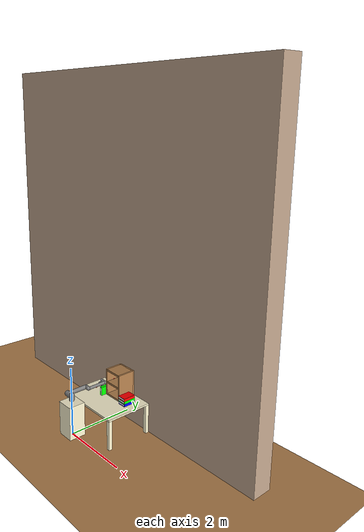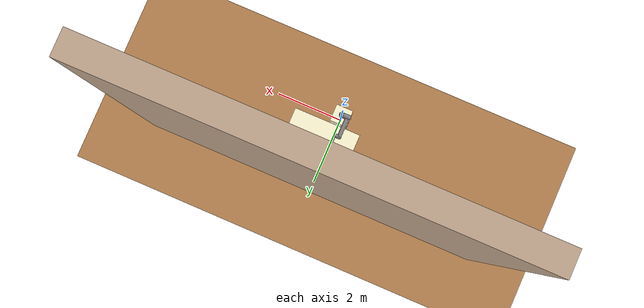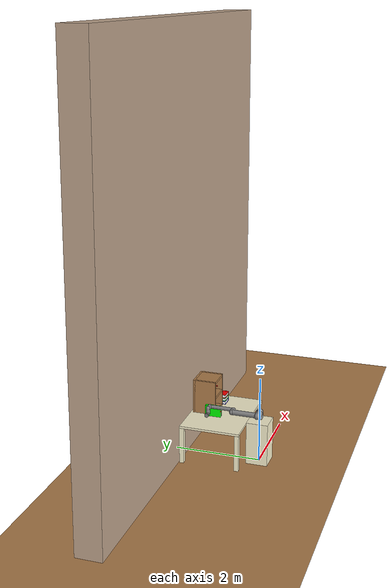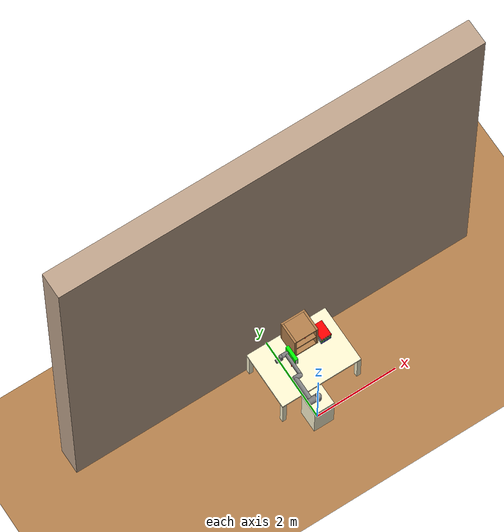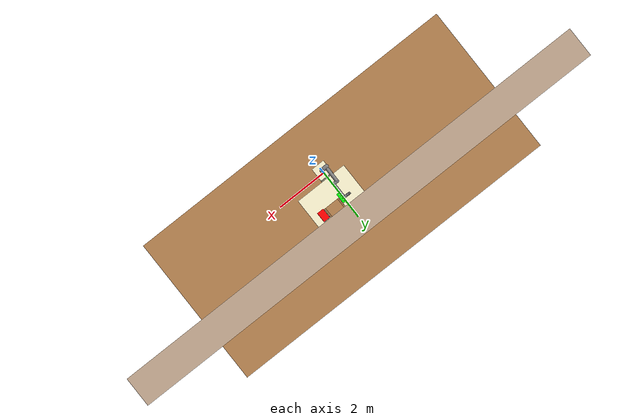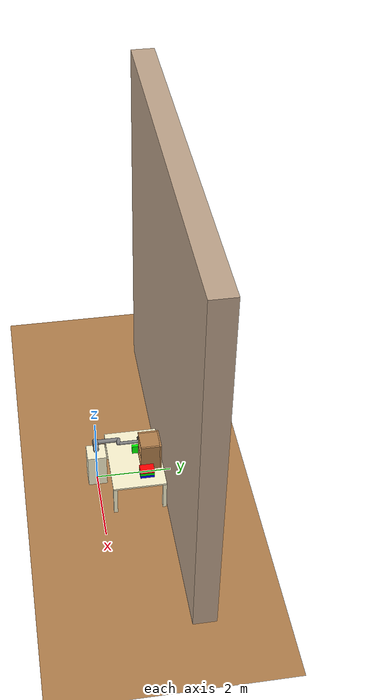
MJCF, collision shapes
<mujoco model="ur10e">
  <compiler angle="radian" meshdir="assets" autolimits="true"/>

  <option integrator="implicitfast"/>

  <default>
    <default class="ur10e">
      <material specular="0.5" shininess="0.25"/>
      <joint axis="0 1 0" range="-6.28319 6.28319" armature="0.1"/>
      <position ctrlrange="-6.2831 6.2831"/>
      <general biastype="affine" ctrlrange="-6.2831 6.2831" gainprm="5000" biasprm="0 -5000 -500"/>
      <default class="size4">
        <joint damping="10"/>
        <general forcerange="-330 330"/>
      </default>
      <default class="size3">
        <joint damping="5"/>
        <general forcerange="-150 150"/>
        <default class="size3_limited">
          <joint range="-3.1415 3.1415"/>
          <general ctrlrange="-3.1415 3.1415"/>
        </default>
      </default>
      <default class="size2">
        <joint damping="2"/>
        <general forcerange="-56 56"/>
      </default>
      <default class="visual">
        <geom type="mesh" contype="0" conaffinity="0" group="2"/>
      </default>
      <default class="collision">
        <geom type="capsule" group="3"/>
        <default class="eef_collision">
          <geom type="cylinder"/>
        </default>
      </default>
      <site size="0.001" rgba="0.5 0.5 0.5 0.3" group="4"/>
    </default>
  </default>

  <asset>
    <material class="ur10e" name="black" rgba="0.033 0.033 0.033 1"/>
    <material class="ur10e" name="jointgray" rgba="0.278 0.278 0.278 1"/>
    <material class="ur10e" name="linkgray" rgba="0.82 0.82 0.82 1"/>
    <material class="ur10e" name="urblue" rgba="0.49 0.678 0.8 1"/>
    <texture name="wood_texture" type="2d" file="assets/wood.png" />
    <material name="wood_material" texture="wood_texture" specular="0.3" shininess="0.1" />
    <texture name="shelf_wood_texture" type="2d" file="assets/shelf_wood.png" />
    <material name="shelf_wood_material" texture="shelf_wood_texture" specular="0.3" shininess="0.1" texrepeat="1 1" texuniform="true" />

    <mesh file="base_0.obj"/>
    <mesh file="base_1.obj"/>
    <mesh file="shoulder_0.obj"/>
    <mesh file="shoulder_1.obj"/>
    <mesh file="shoulder_2.obj"/>
    <mesh file="upperarm_0.obj"/>
    <mesh file="upperarm_1.obj"/>
    <mesh file="upperarm_2.obj"/>
    <mesh file="upperarm_3.obj"/>
    <mesh file="forearm_0.obj"/>
    <mesh file="forearm_1.obj"/>
    <mesh file="forearm_2.obj"/>
    <mesh file="forearm_3.obj"/>
    <mesh file="wrist1_0.obj"/>
    <mesh file="wrist1_1.obj"/>
    <mesh file="wrist1_2.obj"/>
    <mesh file="wrist2_0.obj"/>
    <mesh file="wrist2_1.obj"/>
    <mesh file="wrist2_2.obj"/>
    <mesh file="wrist3.obj"/>

    <texture name="texplane" type="2d" builtin="checker" rgb1=".2 .3 .4" rgb2=".1 0.15 0.2" width="100" height="100" />
    <material name="MatPlane" reflectance="0.5" texture="texplane" texrepeat="1 1" texuniform="true" />
    <material name="red_cover" rgba="1 0 0 1" />
        <!-- White material for the pages -->
    <material name="white_pages" rgba="1 1 1 1" />
  </asset>

  <worldbody>
    <geom name="floor" pos="0 0 0" size="500 500 0.125" type="plane" material='shelf_wood_material' condim="3" group="2"/>
    <light name="spotlight" mode="targetbodycom" target="wrist_2_link" pos="0 -1 2"/>
    <camera pos="4.863 0.258 1.375" xyaxes="0 1 0.000 -0.215 0 1"/>
    <camera name="custom_view" pos="2.327 3.864 4.158" xyaxes="-0.834 0.552 0.000 -0.361 -0.545 0.757"/>
    <camera name="manipulation_view_1" pos="-0.420 -0.913 2.605" xyaxes="0.974 -0.227 -0.000 0.139 0.595 0.791"/>
    <camera name="manipulation_view_2" pos="1.440 -0.462 2.380" xyaxes="0.690 0.723 -0.000 -0.367 0.350 0.862"/>
    <camera name="obstacle_avoidance_view" pos="0.710 -1.344 1.547" xyaxes="0.954 0.299 -0.000 -0.042 0.134 0.990"/>
    <camera name="obstacle_avoidance_view_2" pos="0.520 -1.374 1.635" xyaxes="0.988 0.151 0.000 -0.021 0.139 0.990"/>
    <camera name="video_2" pos="2.001 -0.671 2.766" xyaxes="0.657 0.754 -0.000 -0.489 0.426 0.761"/>
    <camera name="video_3" pos="-1.681 -0.140 1.998" xyaxes="0.421 -0.907 -0.000 0.314 0.146 0.938"/>

    <body name="new_table" pos="0.3 1.0 0.75">
        <!-- Table top -->
        <geom name="table_top" type="box" size="1 0.7 0.025" pos="0 0 0.13" rgba='0.99 0.96 0.82 1' />

        <!-- Table legs -->
        <body name="table_leg1" pos="0.95 0.65 -0.323">
            <geom name="leg1" type="box" size="0.05 0.05 0.427" rgba='0.99 0.96 0.82 1'  />
        </body>
        <body name="table_leg2" pos="-0.95 0.65 -0.323">
            <geom name="leg2" type="box" size="0.05 0.05 0.427" rgba='0.99 0.96 0.82 1'  />
        </body>
        <body name="table_leg3" pos="0.95 -0.65 -0.323">
            <geom name="leg3" type="box" size="0.05 0.05 0.427" rgba='0.99 0.96 0.82 1'  />
        </body>
        <body name="table_leg4" pos="-0.95 -0.65 -0.323">
            <geom name="leg4" type="box" size="0.05 0.05 0.427" rgba='0.99 0.96 0.82 1'  />
        </body>
    </body>

    <site name="start_point" pos="-0.07 0.91 1.105" size="0.015" rgba="1 0 0 1"/>
    <site name="middle_point_1" pos="-0.05 0.94 1.155" size="0.015" rgba="0 1 0 0"/>
    <site name="middle_point_2" pos="-0.03 0.97 1.205" size="0.015" rgba="0 1 0 0"/>
    <site name="middle_point_3" pos="-0.01 1 1.255" size="0.015" rgba="0 1 0 0"/>
    <site name="middle_point_4" pos="0.05 1.005 1.28" size="0.015" rgba="0 1 0 0"/>
    <site name="middle_point_5" pos="0.1 1.01 1.305" size="0.015" rgba="0 1 0 0"/>
    <site name="middle_point_6" pos="0.15 1.015 1.330" size="0.015" rgba="0 1 0 0"/>
    <site name="middle_point_7" pos="0.2 1.02 1.355" size="0.015" rgba="0 1 0 0"/>
    <site name="middle_point_8" pos="0.25 1.015 1.38" size="0.015" rgba="0 1 0 0"/>
    <site name="middle_point_9" pos="0.3 1.02 1.405" size="0.015" rgba="0 1 0 0"/>
    <site name="middle_point_10" pos="0.35 1.02 1.43" size="0.015" rgba="0 1 0 0"/>
    <site name="middle_point_11" pos="0.4 1.02 1.455" size="0.015" rgba="0 1 0 0"/>
    <site name="middle_point_12" pos="0.407 1.055 1.467" size="0.015" rgba="0 1 0 0"/>
    <site name="middle_point_13" pos="0.415 1.09 1.48" size="0.015" rgba="0 1 0 0"/>
    <site name="middle_point_14" pos="0.422 1.125 1.492" size="0.015" rgba="0 1 0 0"/>
    <site name="middle_point_15" pos="0.43 1.16 1.505" size="0.015" rgba="0 1 0 0"/>

    <site name="goal_point" pos="0.43 1.16 1.505" size="0.015" rgba="1 0 0 1"/>

    <body name="robot_base" pos="0 0 0.5">
        <geom type="box" size="0.25 0.25 0.5" rgba="0.99 0.96 0.82 1"/>
    </body>

    <body name="behind_wall" pos="0 2.02 5.0">
        <geom type="box" size="5.0 0.3 5.0" rgba="0.745 0.64 0.545 1"/>
    </body>

    <body name="shelf_1" pos="0.155 1.36 1.305">
        <geom type="box" size="0.025 0.25 0.4" material='wood_material'/>
    </body>

    <body name="shelf_2" pos="0.705 1.36 1.305">
        <geom type="box" size="0.025 0.25 0.4" material='wood_material'/>
    </body>

    <body name="shelf_3" pos="0.43 1.36 1.305">
        <geom type="box" size="0.25 0.25 0.025" material='wood_material'/>
    </body>

    <body name="shelf_4" pos="0.43 1.36 0.93">
        <geom type="box" size="0.25 0.25 0.025" material='wood_material'/>
    </body>

    <body name="shelf_5" pos="0.43 1.36 1.68">
        <geom type="box" size="0.25 0.25 0.025" material='wood_material'/>
    </body>

    <body name="shelf_6" pos="0.43 1.625 1.305">
        <geom type="box" size="0.3 0.025 0.4" material='wood_material'/>
    </body>

    <body name="book_1" pos="0.08 1.135 1.03">
        <geom type="box" size="0.005 0.187 0.125" pos="0.035 0 0" rgba="0 1 0 1" />
        <geom type="box" size="0.005 0.187 0.125" pos="-0.035 0 0" rgba="0 1 0 1" />
        <geom type="box" size="0.04 0.187 0.005" pos="0 0 0.124" rgba="0 1 0 1" />
        <geom type="box" size="0.03 0.18 0.125" pos="0 0 0" rgba="1 1 1 1" />
    </body>

    <body name="book_2" pos="0.9 1.235 0.945" quat="0.707 0 0.707 0">
        <geom type="box" size="0.005 0.187 0.125" pos="0.035 0 0" rgba="0 0 1 1" />
        <geom type="box" size="0.005 0.187 0.125" pos="-0.035 0 0" rgba="0 0 1 1" />
        <geom type="box" size="0.04 0.187 0.005" pos="0 0 0.124" rgba="0 0 1 1" />
        <geom type="box" size="0.03 0.18 0.125" pos="0 0 0" rgba="1 1 1 1" />
    </body>

    <body name="book_3" pos="0.9 1.235 1.025" quat="0.707 0 0.707 0">
        <geom type="box" size="0.005 0.187 0.125" pos="0.035 0 0" rgba="0 1 0 1" />
        <geom type="box" size="0.005 0.187 0.125" pos="-0.035 0 0" rgba="0 1 0 1" />
        <geom type="box" size="0.04 0.187 0.005" pos="0 0 0.124" rgba="0 1 0 1" />
        <geom type="box" size="0.03 0.18 0.125" pos="0 0 0" rgba="1 1 1 1" />
    </body>

    <body name="book_4" pos="0.9 1.235 1.105" quat="0.707 0 0.707 0">
        <geom type="box" size="0.005 0.187 0.125" pos="0.035 0 0" rgba="1 0 0 1" />
        <geom type="box" size="0.005 0.187 0.125" pos="-0.035 0 0" rgba="1 0 0 1" />
        <geom type="box" size="0.04 0.187 0.005" pos="0 0 0.124" rgba="1 0 0 1" />
        <geom type="box" size="0.03 0.18 0.125" pos="0 0 0" rgba="1 1 1 1" />
    </body>

    <body name="base" pos="0 0 1" quat="1 0 0 1" childclass="ur10e">
      <inertial mass="4.0" pos="0 0 0" diaginertia="0.0061063308908 0.0061063308908 0.01125"/>
      <geom name="base_0" mesh="base_0" material="black" class="visual"/>
      <geom name="base_1" mesh="base_1" material="jointgray" class="visual"/>
      <body name="shoulder_link" pos="0 0 0.181">
        <inertial pos="0 0 0" mass="7.778" diaginertia="0.0314743 0.0314743 0.0218756"/>
        <joint name="shoulder_pan_joint" class="size4" axis="0 0 1"/>
        <geom name="shoulder_0" mesh="shoulder_0" material="urblue" class="visual"/>
        <geom name="shoulder_1" mesh="shoulder_1" material="black" class="visual"/>
        <geom name="shoulder_2" mesh="shoulder_2" material="jointgray" class="visual"/>
        <geom name="shoulder_collision" class="collision" size="0.078 0.06" pos="0 0 -0.04"/>
        <body name="upper_arm_link" pos="0 0.176 0" quat="1 0 1 0">
          <inertial pos="0 0 0.3065" mass="12.93" diaginertia="0.423074 0.423074 0.0363656"/>
          <joint name="shoulder_lift_joint" class="size4"/>
          <geom name="upperarm_0" mesh="upperarm_0" material="black" class="visual"/>
          <geom name="upperarm_1" mesh="upperarm_1" material="jointgray" class="visual"/>
          <geom name="upperarm_2" mesh="upperarm_2" material="urblue" class="visual"/>
          <geom name="upperarm_3" mesh="upperarm_3" material="linkgray" class="visual"/>
          <geom name="upperarm_collision_1" class="collision" pos="0 -0.05 0" quat="1 1 0 0" size="0.078 0.08"/>
          <geom name="upperarm_collision_2" class="collision" size="0.06 0.3" pos="0 0 0.3"/>
          <body name="forearm_link" pos="0 -0.137 0.613">
            <inertial pos="0 0 0.2855" mass="3.87" diaginertia="0.11059 0.11059 0.0108844"/>
            <joint name="elbow_joint" class="size3_limited"/>
            <geom name="forearm_0" mesh="forearm_0" material="urblue" class="visual"/>
            <geom name="forearm_1" mesh="forearm_1" material="black" class="visual"/>
            <geom name="forearm_2" mesh="forearm_2" material="jointgray" class="visual"/>
            <geom name="forearm_3" mesh="forearm_3" material="linkgray" class="visual"/>
            <geom name="forearm_collision_1" class="collision" pos="0 0.08 0" quat="1 1 0 0" size="0.058 0.065"/>
            <geom name="forearm_collision_2" class="collision" size="0.043 0.28" pos="0 0 0.29"/>
            <body name="wrist_1_link" pos="0 0 0.571" quat="1 0 1 0">
              <inertial pos="0 0.135 0" quat="0.5 0.5 -0.5 0.5" mass="1.96"
                diaginertia="0.0055125 0.00510825 0.00510825"/>
              <joint name="wrist_1_joint" class="size2"/>
              <geom name="wrist1_0" mesh="wrist1_0" material="black" class="visual"/>
              <geom name="wrist1_1" mesh="wrist1_1" material="urblue" class="visual"/>
              <geom name="wrist1_2" mesh="wrist1_2" material="jointgray" class="visual"/>
              <geom name="wrist1_collision" class="collision" pos="0 0.06 0" quat="1 1 0 0" size="0.05 0.07"/>
              <body name="wrist_2_link" pos="0 0.135 0">
                <inertial pos="0 0 0.12" quat="0.5 0.5 -0.5 0.5" mass="1.96"
                  diaginertia="0.0055125 0.00510825 0.00510825"/>
                <joint name="wrist_2_joint" axis="0 0 1" class="size2"/>
                <geom name="wrist2_0" mesh="wrist2_0" material="black" class="visual"/>
                <geom name="wrist2_1" mesh="wrist2_1" material="urblue" class="visual"/>
                <geom name="wrist2_2" mesh="wrist2_2" material="jointgray" class="visual"/>
                <geom name="wrist2_collision_1" class="collision" size="0.046 0.065" pos="0 0 0.05"/>
                <geom name="wrist2_collision_2" class="collision" pos="0 0.028 0.12" quat="1 1 0 0" size="0.046 0.043"/>
                <body name="wrist_3_link" pos="0 0 0.12">
                  <inertial pos="0 0.092 0" quat="0 1 -1 0" mass="0.202"
                    diaginertia="0.000204525 0.000144346 0.000144346"/>
                  <joint name="wrist_3_joint" class="size2"/>
                  <geom name="wrist3" material="linkgray" mesh="wrist3" class="visual"/>
                  <geom name="eef_collision" class="eef_collision" pos="0 0.097 0" quat="1 1 0 0" size="0.046 0.02"/>
                  <site name="attachment_site" pos="0 0.1 0" quat="-1 1 0 0"/>
                </body>
              </body>
            </body>
          </body>
        </body>
      </body>
    </body>
  </worldbody>

  <actuator>
    <general class="size4" name="shoulder_pan" joint="shoulder_pan_joint"/>
    <general class="size4" name="shoulder_lift" joint="shoulder_lift_joint"/>
    <general class="size3_limited" name="elbow" joint="elbow_joint"/>
    <general class="size2" name="wrist_1" joint="wrist_1_joint"/>
    <general class="size2" name="wrist_2" joint="wrist_2_joint"/>
    <general class="size2" name="wrist_3" joint="wrist_3_joint"/>
  </actuator>

  <keyframe>
    <key name="home" qpos="-1.5708 -1.5708 1.5708 -1.5708 -1.5708 0" ctrl="-1.5708 -1.5708 1.5708 -1.5708 -1.5708 0"/>
    <key name="Init_pos" qpos="0 -0.69 1.35 -0.570 3.14 0" qvel="0 -0.69 1.35 -0.570 3.14 0"/>
    <key name="middle_point_1" qpos="-0.0628 -0.817 1.32 -1.19 3.14 0" qvel="0 -0.69 1.35 -0.570 3.14 0"/>
    <key name="middle_point_2" qpos="-0.251 -0.817 1.16 -1.19 3.14 0" qvel="0 -0.69 1.35 -0.570 3.14 0"/>
    <key name="middle_point_3" qpos="-0.44 -0.817 1.01 -1.19 3.14 0" qvel="0 -0.69 1.35 -0.570 3.14 0"/>
    <key name="middle_point_4" qpos="-0.405 -0.44 0.283 -1.19 3.14 0" qvel="0 -0.69 1.35 -0.570 3.14 0"/>
  </keyframe>
</mujoco>
